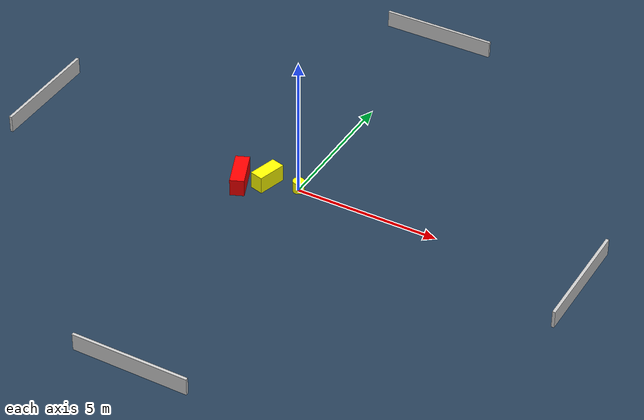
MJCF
<?xml version="1.0" ?>
<mujoco model="generated_environment">
  <option timestep="0.01" integrator="RK4" cone="elliptic"/>
  <default>
    <geom density="1"/>
  </default>
  <asset>
    <texture builtin="gradient" height="3072" name="skybox" rgb1="0.3 0.5 0.7" rgb2="0 0 0" type="skybox" width="512"/>
    <texture builtin="checker" height="300" name="groundplane" rgb1="0.2 0.3 0.4" rgb2="0.1 0.2 0.3" type="2d" width="300"/>
    <material name="groundplane" reflectance="0.2" texrepeat="5 5" texture="groundplane"/>
  </asset>
  <worldbody>
    <light dir="0 0 -1" directional="true" pos="0 0 1.5"/>
    <geom condim="3" friction="0.5 0.005 0.001" material="groundplane" name="floor" pos="0 0 0" size="0 0 0.05" type="plane"/>
    <body name="walls">
      <geom name="wall_1" condim="4" pos="-10.0 0.0 0.3" rgba="0.800000011920929 0.800000011920929 0.800000011920929 1.0" size="0.05 2.0 0.3" type="box"/>
      <geom name="wall_2" condim="4" pos="10.0 0.0 0.3" rgba="0.800000011920929 0.800000011920929 0.800000011920929 1.0" size="0.05 2.0 0.3" type="box"/>
      <geom name="wall_3" condim="4" pos="0.0 -10.0 0.3" rgba="0.800000011920929 0.800000011920929 0.800000011920929 1.0" size="2.0 0.05 0.3" type="box"/>
      <geom name="wall_4" condim="4" pos="0.0 10.0 0.3" rgba="0.800000011920929 0.800000011920929 0.800000011920929 1.0" size="2.0 0.05 0.3" type="box"/>
    </body>
    <body name="robot">
      <joint name="joint_x" type="slide" pos="0 0 0" axis="1 0 0"/>
      <joint name="joint_y" type="slide" pos="0 0 0" axis="0 1 0"/>
      <geom name="robot" type="cylinder" pos="0.0 0.0 0.2" size="0.2 0.2 0.0" mass="5.0" friction="1.0 0.005 0.0001" condim="4" rgba="1.0 1.0 0.0 1.0"/>
    </body>
    <body name="obstacle_1_movable">
      <geom name="obstacle_1_movable" condim="4" pos="-1.0763610674488706 -0.18322651572346202 0.3" euler="0 0 344.9479480183166" friction="0.0 0.005 0.001" rgba="1.0 1.0 0.0 1.0" size="0.2379764170818833 0.5031157494251612 0.3" type="box" mass="0.1"/>
      <joint type="free"/>
    </body>
    <body name="obstacle_2_static">
      <geom name="obstacle_2_static" condim="4" pos="-1.8584683300295666 -0.608378445707735 0.3" euler="0 0 112.38918030233386" friction="0.0 0.005 0.001" rgba="1.0 0.0 0.0 1.0" size="0.6641462639866471 0.24073524248475836 0.3" type="box"/>
    </body>
  </worldbody>
  <actuator>
    <motor name="actuator_x" joint="joint_x" gear="1" ctrlrange="-1 1"/>
    <motor name="actuator_y" joint="joint_y" gear="1" ctrlrange="-1 1"/>
  </actuator>
</mujoco>
